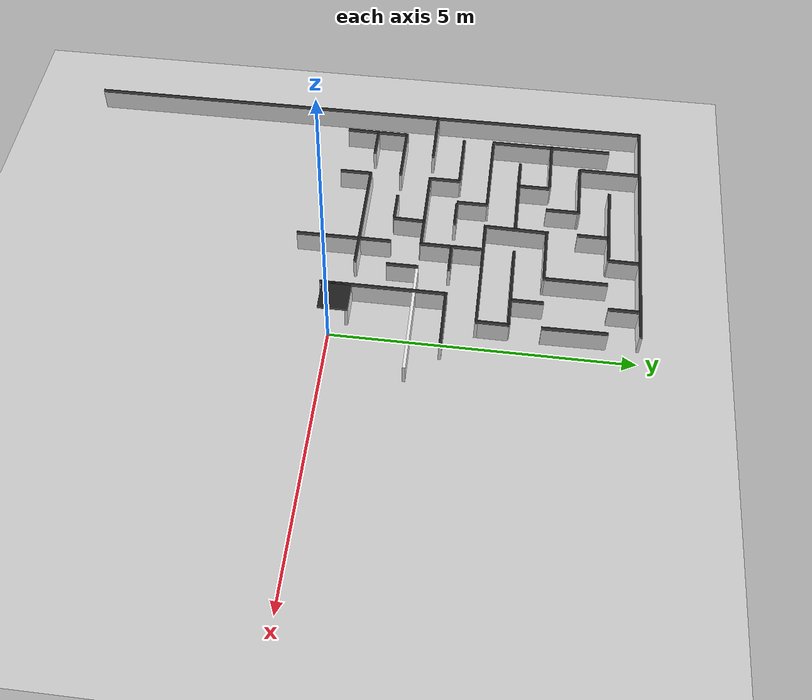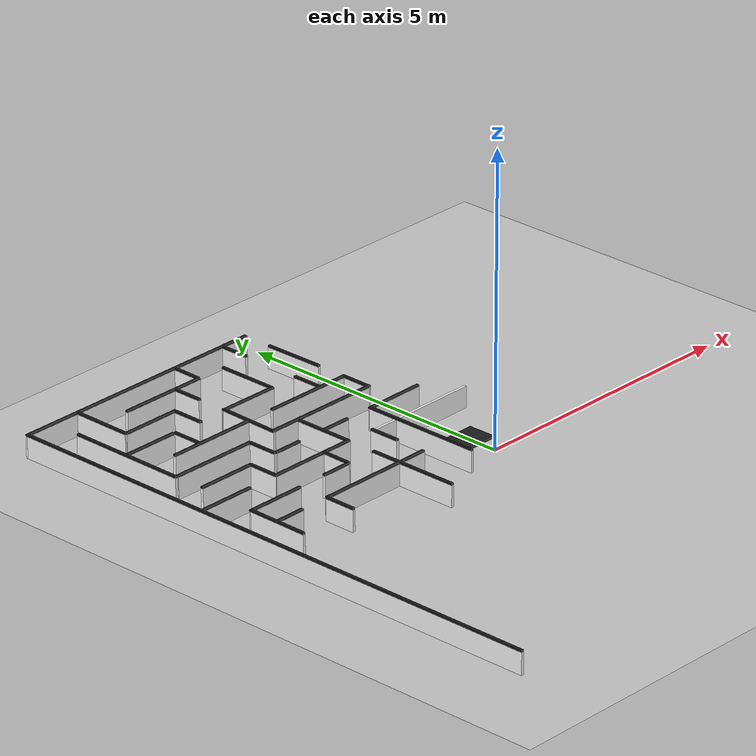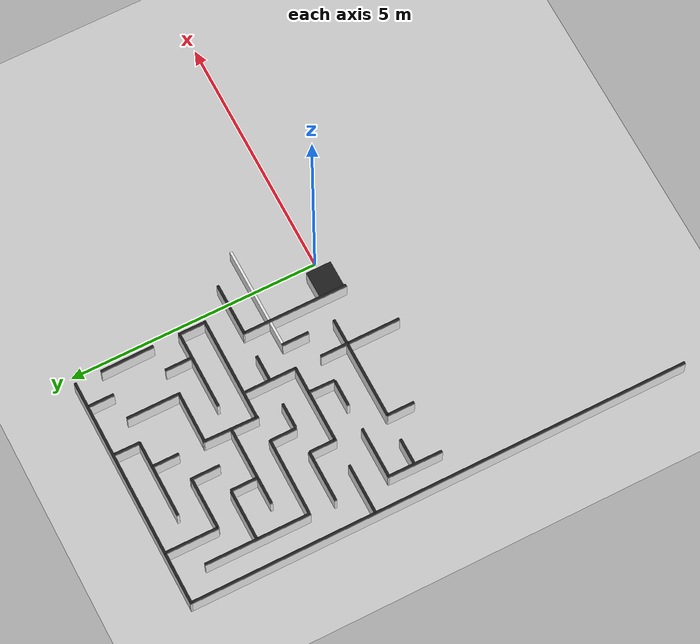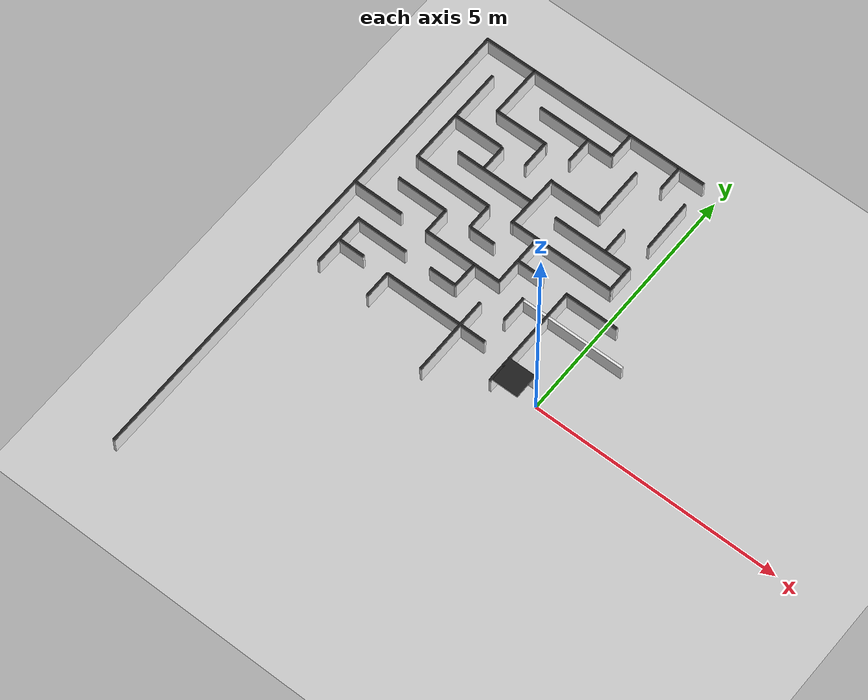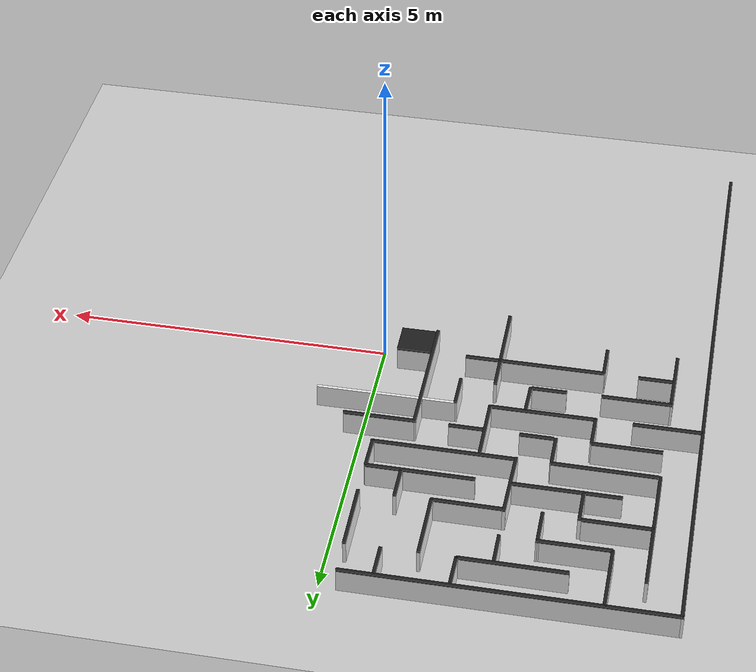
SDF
<sdf version="1.6">
 <world name="default">
  <model name="ground_plane">
   <static>1</static>
   <link name="link">
    <collision name="collision">
     <geometry><plane><normal>0 0 1</normal><size>100 100</size></plane></geometry>
     <surface><friction><ode><mu>100</mu><mu2>50</mu2></ode></friction></surface>
    </collision>
    <visual name="visual">
     <cast_shadows>0</cast_shadows>
     <geometry><plane><normal>0 0 1</normal><size>100 100</size></plane></geometry>
     <material>
      <script><uri>file://media/materials/scripts/gazebo.material</uri><name>Gazebo/Grey</name></script>
     </material>
    </visual>
   </link>
  </model>
  <model name="ibomaze">
   <link name="Wall_0">
    <collision name="Wall_0_Collision">
     <geometry><box><size>10.031 0.05 0.37</size></box></geometry>
     <pose>0 0 0.185 0 -0 0</pose>
    </collision>
    <visual name="Wall_0_Visual">
     <pose>0 0 0.185 0 -0 0</pose>
     <geometry><box><size>10.031 0.05 0.37</size></box></geometry>
     <material>
      <script><uri>file://media/materials/scripts/gazebo.material</uri><name>Gazebo/White</name></script>
      <ambient>1 1 1 1</ambient>
     </material>
    </visual>
    <pose>-4.98755 0.012016 0 0 -0 1.57082</pose>
   </link>
   <link name="Wall_110">
    <collision name="Wall_110_Collision">
     <geometry><box><size>1.10019 0.05 0.37</size></box></geometry>
     <pose>0 0 0.185 0 -0 0</pose>
    </collision>
    <visual name="Wall_110_Visual">
     <pose>0 0 0.185 0 -0 0</pose>
     <geometry><box><size>1.10019 0.05 0.37</size></box></geometry>
     <material>
      <script><uri>file://media/materials/scripts/gazebo.material</uri><name>Gazebo/White</name></script>
      <ambient>1 1 1 1</ambient>
     </material>
    </visual>
    <pose>-4.47942 0.275539 0 0 -0 1.56127</pose>
   </link>
   <link name="Wall_112">
    <collision name="Wall_112_Collision">
     <geometry><box><size>0.52 0.05 0.37</size></box></geometry>
     <pose>0 0 0.185 0 -0 0</pose>
    </collision>
    <visual name="Wall_112_Visual">
     <pose>0 0 0.185 0 -0 0</pose>
     <geometry><box><size>0.52 0.05 0.37</size></box></geometry>
     <material>
      <script><uri>file://media/materials/scripts/gazebo.material</uri><name>Gazebo/White</name></script>
      <ambient>1 1 1 1</ambient>
     </material>
    </visual>
    <pose>-4.19942 0.280539 0 0 -0 0</pose>
   </link>
   <link name="Wall_114">
    <collision name="Wall_114_Collision">
     <geometry><box><size>1.06 0.05 0.37</size></box></geometry>
     <pose>0 0 0.185 0 -0 0</pose>
    </collision>
    <visual name="Wall_114_Visual">
     <pose>0 0 0.185 0 -0 0</pose>
     <geometry><box><size>1.06 0.05 0.37</size></box></geometry>
     <material>
      <script><uri>file://media/materials/scripts/gazebo.material</uri><name>Gazebo/White</name></script>
      <ambient>1 1 1 1</ambient>
     </material>
    </visual>
    <pose>-3.96942 0.800539 0 0 -0 0</pose>
   </link>
   <link name="Wall_116">
    <collision name="Wall_116_Collision">
     <geometry><box><size>1.02 0.05 0.37</size></box></geometry>
     <pose>0 0 0.185 0 -0 0</pose>
    </collision>
    <visual name="Wall_116_Visual">
     <pose>0 0 0.185 0 -0 0</pose>
     <geometry><box><size>1.02 0.05 0.37</size></box></geometry>
     <material>
      <script><uri>file://media/materials/scripts/gazebo.material</uri><name>Gazebo/White</name></script>
      <ambient>1 1 1 1</ambient>
     </material>
    </visual>
    <pose>-4.46942 1.33054 0 0 -0 0</pose>
   </link>
   <link name="Wall_118">
    <collision name="Wall_118_Collision">
     <geometry><box><size>0.53023 0.05 0.37</size></box></geometry>
     <pose>0 0 0.185 0 -0 0</pose>
    </collision>
    <visual name="Wall_118_Visual">
     <pose>0 0 0.185 0 -0 0</pose>
     <geometry><box><size>0.53023 0.05 0.37</size></box></geometry>
     <material>
      <script><uri>file://media/materials/scripts/gazebo.material</uri><name>Gazebo/White</name></script>
      <ambient>1 1 1 1</ambient>
     </material>
    </visual>
    <pose>-2.65442 0.810539 0 0 -0 0</pose>
   </link>
   <link name="Wall_120">
    <collision name="Wall_120_Collision">
     <geometry><box><size>0.540102 0.05 0.37</size></box></geometry>
     <pose>0 0 0.185 0 -0 0</pose>
    </collision>
    <visual name="Wall_120_Visual">
     <pose>0 0 0.185 0 -0 0</pose>
     <geometry><box><size>0.540102 0.05 0.37</size></box></geometry>
     <material>
      <script><uri>file://media/materials/scripts/gazebo.material</uri><name>Gazebo/White</name></script>
      <ambient>1 1 1 1</ambient>
     </material>
    </visual>
    <pose>-2.36961 1.07227 0 0 0 -1.5912</pose>
   </link>
   <link name="Wall_122">
    <collision name="Wall_122_Collision">
     <geometry><box><size>1.59805 0.05 0.37</size></box></geometry>
     <pose>0 0 0.185 0 -0 0</pose>
    </collision>
    <visual name="Wall_122_Visual">
     <pose>0 0 0.185 0 -0 0</pose>
     <geometry><box><size>1.59805 0.05 0.37</size></box></geometry>
     <material>
      <script><uri>file://media/materials/scripts/gazebo.material</uri><name>Gazebo/White</name></script>
      <ambient>1 1 1 1</ambient>
     </material>
    </visual>
    <pose>-2.61942 1.33054 0 0 -0 3.14159</pose>
   </link>
   <link name="Wall_124">
    <collision name="Wall_124_Collision">
     <geometry><box><size>0.543 0.05 0.37</size></box></geometry>
     <pose>0 0 0.185 0 -0 0</pose>
    </collision>
    <visual name="Wall_124_Visual">
     <pose>0 0 0.185 0 -0 0</pose>
     <geometry><box><size>0.543 0.05 0.37</size></box></geometry>
     <material>
      <script><uri>file://media/materials/scripts/gazebo.material</uri><name>Gazebo/White</name></script>
      <ambient>1 1 1 1</ambient>
     </material>
    </visual>
    <pose>-3.40927 1.58031 0 0 0 -1.5708</pose>
   </link>
   <link name="Wall_126">
    <collision name="Wall_126_Collision">
     <geometry><box><size>1.043 0.05 0.37</size></box></geometry>
     <pose>0 0 0.185 0 -0 0</pose>
    </collision>
    <visual name="Wall_126_Visual">
     <pose>0 0 0.185 0 -0 0</pose>
     <geometry><box><size>1.043 0.05 0.37</size></box></geometry>
     <material>
      <script><uri>file://media/materials/scripts/gazebo.material</uri><name>Gazebo/White</name></script>
      <ambient>1 1 1 1</ambient>
     </material>
    </visual>
    <pose>-3.92799 1.85254 0 0 -0 0</pose>
   </link>
   <link name="Wall_128">
    <collision name="Wall_128_Collision">
     <geometry><box><size>0.51 0.05 0.37</size></box></geometry>
     <pose>0 0 0.185 0 -0 0</pose>
    </collision>
    <visual name="Wall_128_Visual">
     <pose>0 0 0.185 0 -0 0</pose>
     <geometry><box><size>0.51 0.05 0.37</size></box></geometry>
     <material>
      <script><uri>file://media/materials/scripts/gazebo.material</uri><name>Gazebo/White</name></script>
      <ambient>1 1 1 1</ambient>
     </material>
    </visual>
    <pose>-2.60561 1.85419 0 0 -0 3.14159</pose>
   </link>
   <link name="Wall_130">
    <collision name="Wall_130_Collision">
     <geometry><box><size>0.521 0.05 0.37</size></box></geometry>
     <pose>0 0 0.185 0 -0 0</pose>
    </collision>
    <visual name="Wall_130_Visual">
     <pose>0 0 0.185 0 -0 0</pose>
     <geometry><box><size>0.521 0.05 0.37</size></box></geometry>
     <material>
      <script><uri>file://media/materials/scripts/gazebo.material</uri><name>Gazebo/White</name></script>
      <ambient>1 1 1 1</ambient>
     </material>
    </visual>
    <pose>-2.88742 2.10975 0 0 0 -1.5708</pose>
   </link>
   <link name="Wall_132">
    <collision name="Wall_132_Collision">
     <geometry><box><size>1.55502 0.05 0.37</size></box></geometry>
     <pose>0 0 0.185 0 -0 0</pose>
    </collision>
    <visual name="Wall_132_Visual">
     <pose>0 0 0.185 0 -0 0</pose>
     <geometry><box><size>1.55502 0.05 0.37</size></box></geometry>
     <material>
      <script><uri>file://media/materials/scripts/gazebo.material</uri><name>Gazebo/White</name></script>
      <ambient>1 1 1 1</ambient>
     </material>
    </visual>
    <pose>-3.65246 2.38026 0 0 0 -0.005316</pose>
   </link>
   <link name="Wall_134">
    <collision name="Wall_134_Collision">
     <geometry><box><size>2.10101 0.05 0.37</size></box></geometry>
     <pose>0 0 0.185 0 -0 0</pose>
    </collision>
    <visual name="Wall_134_Visual">
     <pose>0 0 0.185 0 -0 0</pose>
     <geometry><box><size>2.10101 0.05 0.37</size></box></geometry>
     <material>
      <script><uri>file://media/materials/scripts/gazebo.material</uri><name>Gazebo/White</name></script>
      <ambient>1 1 1 1</ambient>
     </material>
    </visual>
    <pose>-4.45884 3.41859 0 0 0 -1.57372</pose>
   </link>
   <link name="Wall_136">
    <collision name="Wall_136_Collision">
     <geometry><box><size>1.01776 0.05 0.37</size></box></geometry>
     <pose>0 0 0.185 0 -0 0</pose>
    </collision>
    <visual name="Wall_136_Visual">
     <pose>0 0 0.185 0 -0 0</pose>
     <geometry><box><size>1.01776 0.05 0.37</size></box></geometry>
     <material>
      <script><uri>file://media/materials/scripts/gazebo.material</uri><name>Gazebo/White</name></script>
      <ambient>1 1 1 1</ambient>
     </material>
    </visual>
    <pose>-3.95442 3.43554 0 0 -0 0</pose>
   </link>
   <link name="Wall_138">
    <collision name="Wall_138_Collision">
     <geometry><box><size>0.534 0.05 0.37</size></box></geometry>
     <pose>0 0 0.185 0 -0 0</pose>
    </collision>
    <visual name="Wall_138_Visual">
     <pose>0 0 0.185 0 -0 0</pose>
     <geometry><box><size>0.534 0.05 0.37</size></box></geometry>
     <material>
      <script><uri>file://media/materials/scripts/gazebo.material</uri><name>Gazebo/White</name></script>
      <ambient>1 1 1 1</ambient>
     </material>
    </visual>
    <pose>-3.41798 3.17122 0 0 -0 1.5708</pose>
   </link>
   <link name="Wall_140">
    <collision name="Wall_140_Collision">
     <geometry><box><size>1.58536 0.05 0.37</size></box></geometry>
     <pose>0 0 0.185 0 -0 0</pose>
    </collision>
    <visual name="Wall_140_Visual">
     <pose>0 0 0.185 0 -0 0</pose>
     <geometry><box><size>1.58536 0.05 0.37</size></box></geometry>
     <material>
      <script><uri>file://media/materials/scripts/gazebo.material</uri><name>Gazebo/White</name></script>
      <ambient>1 1 1 1</ambient>
     </material>
    </visual>
    <pose>-3.17992 2.89854 0 0 -0 0</pose>
   </link>
   <link name="Wall_142">
    <collision name="Wall_142_Collision">
     <geometry><box><size>1.10734 0.05 0.37</size></box></geometry>
     <pose>0 0 0.185 0 -0 0</pose>
    </collision>
    <visual name="Wall_142_Visual">
     <pose>0 0 0.185 0 -0 0</pose>
     <geometry><box><size>1.10734 0.05 0.37</size></box></geometry>
     <material>
      <script><uri>file://media/materials/scripts/gazebo.material</uri><name>Gazebo/White</name></script>
      <ambient>1 1 1 1</ambient>
     </material>
    </visual>
    <pose>-2.36302 2.90878 0 0 0 -1.59184</pose>
   </link>
   <link name="Wall_144">
    <collision name="Wall_144_Collision">
     <geometry><box><size>2.15608 0.05 0.37</size></box></geometry>
     <pose>0 0 0.185 0 -0 0</pose>
    </collision>
    <visual name="Wall_144_Visual">
     <pose>0 0 0.185 0 -0 0</pose>
     <geometry><box><size>2.15608 0.05 0.37</size></box></geometry>
     <material>
      <script><uri>file://media/materials/scripts/gazebo.material</uri><name>Gazebo/White</name></script>
      <ambient>1 1 1 1</ambient>
     </material>
    </visual>
    <pose>-1.31538 2.38538 0 0 0 -0.000543</pose>
   </link>
   <link name="Wall_146">
    <collision name="Wall_146_Collision">
     <geometry><box><size>1.037 0.05 0.37</size></box></geometry>
     <pose>0 0 0.185 0 -0 0</pose>
    </collision>
    <visual name="Wall_146_Visual">
     <pose>0 0 0.185 0 -0 0</pose>
     <geometry><box><size>1.037 0.05 0.37</size></box></geometry>
     <material>
      <script><uri>file://media/materials/scripts/gazebo.material</uri><name>Gazebo/White</name></script>
      <ambient>1 1 1 1</ambient>
     </material>
    </visual>
    <pose>-1.83642 1.83616 0 0 0 -1.5708</pose>
   </link>
   <link name="Wall_148">
    <collision name="Wall_148_Collision">
     <geometry><box><size>0.529886 0.05 0.37</size></box></geometry>
     <pose>0 0 0.185 0 -0 0</pose>
    </collision>
    <visual name="Wall_148_Visual">
     <pose>0 0 0.185 0 -0 0</pose>
     <geometry><box><size>0.529886 0.05 0.37</size></box></geometry>
     <material>
      <script><uri>file://media/materials/scripts/gazebo.material</uri><name>Gazebo/White</name></script>
      <ambient>1 1 1 1</ambient>
     </material>
    </visual>
    <pose>-1.56342 1.84954 0 0 -0 3.14159</pose>
   </link>
   <link name="Wall_152">
    <collision name="Wall_152_Collision">
     <geometry><box><size>4.75301 0.05 0.37</size></box></geometry>
     <pose>0 0 0.185 0 -0 0</pose>
    </collision>
    <visual name="Wall_152_Visual">
     <pose>0 0 0.185 0 -0 0</pose>
     <geometry><box><size>4.75301 0.05 0.37</size></box></geometry>
     <material>
      <script><uri>file://media/materials/scripts/gazebo.material</uri><name>Gazebo/White</name></script>
      <ambient>1 1 1 1</ambient>
     </material>
    </visual>
    <pose>-2.63618 5.00649 0 0 -0 0.001701</pose>
   </link>
   <link name="Wall_154">
    <collision name="Wall_154_Collision">
     <geometry><box><size>1.06401 0.05 0.37</size></box></geometry>
     <pose>0 0 0.185 0 -0 0</pose>
    </collision>
    <visual name="Wall_154_Visual">
     <pose>0 0 0.185 0 -0 0</pose>
     <geometry><box><size>1.06401 0.05 0.37</size></box></geometry>
     <material>
      <script><uri>file://media/materials/scripts/gazebo.material</uri><name>Gazebo/White</name></script>
      <ambient>1 1 1 1</ambient>
     </material>
    </visual>
    <pose>-3.94298 4.48062 0 0 0 -1.57573</pose>
   </link>
   <link name="Wall_156">
    <collision name="Wall_156_Collision">
     <geometry><box><size>1.07401 0.05 0.37</size></box></geometry>
     <pose>0 0 0.185 0 -0 0</pose>
    </collision>
    <visual name="Wall_156_Visual">
     <pose>0 0 0.185 0 -0 0</pose>
     <geometry><box><size>1.07401 0.05 0.37</size></box></geometry>
     <material>
      <script><uri>file://media/materials/scripts/gazebo.material</uri><name>Gazebo/White</name></script>
      <ambient>1 1 1 1</ambient>
     </material>
    </visual>
    <pose>-3.40842 3.95604 0 0 0 -3.13671</pose>
   </link>
   <link name="Wall_158">
    <collision name="Wall_158_Collision">
     <geometry><box><size>0.587 0.05 0.37</size></box></geometry>
     <pose>0 0 0.185 0 -0 0</pose>
    </collision>
    <visual name="Wall_158_Visual">
     <pose>0 0 0.185 0 -0 0</pose>
     <geometry><box><size>0.587 0.05 0.37</size></box></geometry>
     <material>
      <script><uri>file://media/materials/scripts/gazebo.material</uri><name>Gazebo/White</name></script>
      <ambient>1 1 1 1</ambient>
     </material>
    </visual>
    <pose>-2.89642 3.69004 0 0 -0 1.5708</pose>
   </link>
   <link name="Wall_160">
    <collision name="Wall_160_Collision">
     <geometry><box><size>0.507585 0.05 0.37</size></box></geometry>
     <pose>0 0 0.185 0 -0 0</pose>
    </collision>
    <visual name="Wall_160_Visual">
     <pose>0 0 0.185 0 -0 0</pose>
     <geometry><box><size>0.507585 0.05 0.37</size></box></geometry>
     <material>
      <script><uri>file://media/materials/scripts/gazebo.material</uri><name>Gazebo/White</name></script>
      <ambient>1 1 1 1</ambient>
     </material>
    </visual>
    <pose>-1.83992 4.73054 0 0 -0 1.55988</pose>
   </link>
   <link name="Wall_162">
    <collision name="Wall_162_Collision">
     <geometry><box><size>1.572 0.05 0.37</size></box></geometry>
     <pose>0 0 0.185 0 -0 0</pose>
    </collision>
    <visual name="Wall_162_Visual">
     <pose>0 0 0.185 0 -0 0</pose>
     <geometry><box><size>1.572 0.05 0.37</size></box></geometry>
     <material>
      <script><uri>file://media/materials/scripts/gazebo.material</uri><name>Gazebo/White</name></script>
      <ambient>1 1 1 1</ambient>
     </material>
    </visual>
    <pose>-2.62248 4.48151 0 0 -0 0</pose>
   </link>
   <link name="Wall_164">
    <collision name="Wall_164_Collision">
     <geometry><box><size>0.523 0.05 0.37</size></box></geometry>
     <pose>0 0 0.185 0 -0 0</pose>
    </collision>
    <visual name="Wall_164_Visual">
     <pose>0 0 0.185 0 -0 0</pose>
     <geometry><box><size>0.523 0.05 0.37</size></box></geometry>
     <material>
      <script><uri>file://media/materials/scripts/gazebo.material</uri><name>Gazebo/White</name></script>
      <ambient>1 1 1 1</ambient>
     </material>
    </visual>
    <pose>-2.35942 4.21098 0 0 -0 1.5708</pose>
   </link>
   <link name="Wall_166">
    <collision name="Wall_166_Collision">
     <geometry><box><size>0.507292 0.05 0.37</size></box></geometry>
     <pose>0 0 0.185 0 -0 0</pose>
    </collision>
    <visual name="Wall_166_Visual">
     <pose>0 0 0.185 0 -0 0</pose>
     <geometry><box><size>0.507292 0.05 0.37</size></box></geometry>
     <material>
      <script><uri>file://media/materials/scripts/gazebo.material</uri><name>Gazebo/White</name></script>
      <ambient>1 1 1 1</ambient>
     </material>
    </visual>
    <pose>-0.784421 4.73804 0 0 -0 1.5708</pose>
   </link>
   <link name="Wall_788">
    <collision name="Wall_788_Collision">
     <geometry><box><size>1.09334 0.05 0.37</size></box></geometry>
     <pose>0 0 0.185 0 -0 0</pose>
    </collision>
    <visual name="Wall_788_Visual">
     <pose>0 0 0.185 0 -0 0</pose>
     <geometry><box><size>1.09334 0.05 0.37</size></box></geometry>
     <material>
      <script><uri>file://media/materials/scripts/gazebo.material</uri><name>Gazebo/White</name></script>
      <ambient>1 1 1 1</ambient>
     </material>
    </visual>
    <pose>-0.265082 1.85072 0 0 -0 0.005412</pose>
   </link>
   <link name="Wall_790">
    <collision name="Wall_790_Collision">
     <geometry><box><size>2.118 0.05 0.37</size></box></geometry>
     <pose>0 0 0.185 0 -0 0</pose>
    </collision>
    <visual name="Wall_790_Visual">
     <pose>0 0 0.185 0 -0 0</pose>
     <geometry><box><size>2.118 0.05 0.37</size></box></geometry>
     <material>
      <script><uri>file://media/materials/scripts/gazebo.material</uri><name>Gazebo/White</name></script>
      <ambient>1 1 1 1</ambient>
     </material>
    </visual>
    <pose>-0.788744 0.813892 0 0 0 -1.57273</pose>
   </link>
   <link name="Wall_796">
    <collision name="Wall_796_Collision">
     <geometry><box><size>1.61493 0.05 0.37</size></box></geometry>
     <pose>0 0 0.185 0 -0 0</pose>
    </collision>
    <visual name="Wall_796_Visual">
     <pose>0 0 0.185 0 -0 0</pose>
     <geometry><box><size>1.61493 0.05 0.37</size></box></geometry>
     <material>
      <script><uri>file://media/materials/scripts/gazebo.material</uri><name>Gazebo/White</name></script>
      <ambient>1 1 1 1</ambient>
     </material>
    </visual>
    <pose>-1.83543 0.010256 0 0 0 -1.56888</pose>
   </link>
   <link name="Wall_798">
    <collision name="Wall_798_Collision">
     <geometry><box><size>2.119 0.05 0.37</size></box></geometry>
     <pose>0 0 0.185 0 -0 0</pose>
    </collision>
    <visual name="Wall_798_Visual">
     <pose>0 0 0.185 0 -0 0</pose>
     <geometry><box><size>2.119 0.05 0.37</size></box></geometry>
     <material>
      <script><uri>file://media/materials/scripts/gazebo.material</uri><name>Gazebo/White</name></script>
      <ambient>1 1 1 1</ambient>
     </material>
    </visual>
    <pose>-2.36618 0.273696 0 0 -0 0</pose>
   </link>
   <link name="Wall_800">
    <collision name="Wall_800_Collision">
     <geometry><box><size>0.55 0.05 0.37</size></box></geometry>
     <pose>0 0 0.185 0 -0 0</pose>
    </collision>
    <visual name="Wall_800_Visual">
     <pose>0 0 0.185 0 -0 0</pose>
     <geometry><box><size>0.55 0.05 0.37</size></box></geometry>
     <material>
      <script><uri>file://media/materials/scripts/gazebo.material</uri><name>Gazebo/White</name></script>
      <ambient>1 1 1 1</ambient>
     </material>
    </visual>
    <pose>-3.41548 0.005426 0 0 -0 1.5708</pose>
   </link>
   <link name="Wall_816">
    <collision name="Wall_816_Collision">
     <geometry><box><size>0.549009 0.05 0.37</size></box></geometry>
     <pose>0 0 0.185 0 -0 0</pose>
    </collision>
    <visual name="Wall_816_Visual">
     <pose>0 0 0.185 0 -0 0</pose>
     <geometry><box><size>0.549009 0.05 0.37</size></box></geometry>
     <material>
      <script><uri>file://media/materials/scripts/gazebo.material</uri><name>Gazebo/White</name></script>
      <ambient>1 1 1 1</ambient>
     </material>
    </visual>
    <pose>-0.515921 0.270131 0 0 0 -3.13558</pose>
   </link>
   <link name="Wall_818">
    <collision name="Wall_818_Collision">
     <geometry><box><size>2.10304 0.05 0.37</size></box></geometry>
     <pose>0 0 0.185 0 -0 0</pose>
    </collision>
    <visual name="Wall_818_Visual">
     <pose>0 0 0.185 0 -0 0</pose>
     <geometry><box><size>2.10304 0.05 0.37</size></box></geometry>
     <material>
      <script><uri>file://media/materials/scripts/gazebo.material</uri><name>Gazebo/White</name></script>
      <ambient>1 1 1 1</ambient>
     </material>
    </visual>
    <pose>-0.260865 1.32367 0 0 -0 0.006332</pose>
   </link>
   <link name="Wall_824">
    <collision name="Wall_824_Collision">
     <geometry><box><size>0.556009 0.05 0.37</size></box></geometry>
     <pose>0 0 0.185 0 -0 0</pose>
    </collision>
    <visual name="Wall_824_Visual">
     <pose>0 0 0.185 0 -0 0</pose>
     <geometry><box><size>0.556009 0.05 0.37</size></box></geometry>
     <material>
      <script><uri>file://media/materials/scripts/gazebo.material</uri><name>Gazebo/White</name></script>
      <ambient>1 1 1 1</ambient>
     </material>
    </visual>
    <pose>-0.264114 2.63781 0 0 -0 1.56487</pose>
   </link>
   <link name="Wall_826">
    <collision name="Wall_826_Collision">
     <geometry><box><size>1.60603 0.05 0.37</size></box></geometry>
     <pose>0 0 0.185 0 -0 0</pose>
    </collision>
    <visual name="Wall_826_Visual">
     <pose>0 0 0.185 0 -0 0</pose>
     <geometry><box><size>1.60603 0.05 0.37</size></box></geometry>
     <material>
      <script><uri>file://media/materials/scripts/gazebo.material</uri><name>Gazebo/White</name></script>
      <ambient>1 1 1 1</ambient>
     </material>
    </visual>
    <pose>-1.05642 2.90554 0 0 -0 0</pose>
   </link>
   <link name="Wall_828">
    <collision name="Wall_828_Collision">
     <geometry><box><size>0.533998 0.05 0.37</size></box></geometry>
     <pose>0 0 0.185 0 -0 0</pose>
    </collision>
    <visual name="Wall_828_Visual">
     <pose>0 0 0.185 0 -0 0</pose>
     <geometry><box><size>0.533998 0.05 0.37</size></box></geometry>
     <material>
      <script><uri>file://media/materials/scripts/gazebo.material</uri><name>Gazebo/White</name></script>
      <ambient>1 1 1 1</ambient>
     </material>
    </visual>
    <pose>-0.785421 3.18054 0 0 0 -1.5708</pose>
   </link>
   <link name="Wall_830">
    <collision name="Wall_830_Collision">
     <geometry><box><size>1.08201 0.05 0.37</size></box></geometry>
     <pose>0 0 0.185 0 -0 0</pose>
    </collision>
    <visual name="Wall_830_Visual">
     <pose>0 0 0.185 0 -0 0</pose>
     <geometry><box><size>1.08201 0.05 0.37</size></box></geometry>
     <material>
      <script><uri>file://media/materials/scripts/gazebo.material</uri><name>Gazebo/White</name></script>
      <ambient>1 1 1 1</ambient>
     </material>
    </visual>
    <pose>-1.83589 3.42965 0 0 0 -0.003876</pose>
   </link>
   <link name="Wall_832">
    <collision name="Wall_832_Collision">
     <geometry><box><size>1.045 0.05 0.37</size></box></geometry>
     <pose>0 0 0.185 0 -0 0</pose>
    </collision>
    <visual name="Wall_832_Visual">
     <pose>0 0 0.185 0 -0 0</pose>
     <geometry><box><size>1.045 0.05 0.37</size></box></geometry>
     <material>
      <script><uri>file://media/materials/scripts/gazebo.material</uri><name>Gazebo/White</name></script>
      <ambient>1 1 1 1</ambient>
     </material>
    </visual>
    <pose>-1.31342 3.95669 0 0 0 -1.5708</pose>
   </link>
   <link name="Wall_896">
    <collision name="Wall_896_Collision">
     <geometry><box><size>1.06506 0.05 0.37</size></box></geometry>
     <pose>0 0 0.185 0 -0 0</pose>
    </collision>
    <visual name="Wall_896_Visual">
     <pose>0 0 0.185 0 -0 0</pose>
     <geometry><box><size>1.06506 0.05 0.37</size></box></geometry>
     <material>
      <script><uri>file://media/materials/scripts/gazebo.material</uri><name>Gazebo/White</name></script>
      <ambient>1 1 1 1</ambient>
     </material>
    </visual>
    <pose>-0.26544 3.964 0 0 0 -1.55996</pose>
   </link>
   <link name="Wall_900">
    <collision name="Wall_900_Collision">
     <geometry><box><size>0.538 0.05 0.37</size></box></geometry>
     <pose>0 0 0.185 0 -0 0</pose>
    </collision>
    <visual name="Wall_900_Visual">
     <pose>0 0 0.185 0 -0 0</pose>
     <geometry><box><size>0.538 0.05 0.37</size></box></geometry>
     <material>
      <script><uri>file://media/materials/scripts/gazebo.material</uri><name>Gazebo/White</name></script>
      <ambient>1 1 1 1</ambient>
     </material>
    </visual>
    <pose>-1.31466 1.06934 0 0 -0 1.5708</pose>
   </link>
   <static>1</static>
  </model>
  <model name="ibomaze_5">
   <pose>0 0 0.37 0 -0 0</pose>
   <link name="Wall_0">
    <collision name="Wall_0_Collision">
     <geometry><box><size>10.031 0.05 0.03</size></box></geometry>
     <pose>0 0 0.015 0 -0 0</pose>
    </collision>
    <visual name="Wall_0_Visual">
     <pose>0 0 0.015 0 -0 0</pose>
     <geometry><box><size>10.031 0.05 0.03</size></box></geometry>
     <material>
      <script><uri>file://media/materials/scripts/gazebo.material</uri><name>Gazebo/Black</name></script>
      <ambient>0 0 0 1</ambient>
     </material>
    </visual>
    <pose>-4.98755 0.012016 0 0 -0 1.57082</pose>
   </link>
   <link name="Wall_110">
    <collision name="Wall_110_Collision">
     <geometry><box><size>1.10019 0.05 0.03</size></box></geometry>
     <pose>0 0 0.015 0 -0 0</pose>
    </collision>
    <visual name="Wall_110_Visual">
     <pose>0 0 0.015 0 -0 0</pose>
     <geometry><box><size>1.10019 0.05 0.03</size></box></geometry>
     <material>
      <script><uri>file://media/materials/scripts/gazebo.material</uri><name>Gazebo/Black</name></script>
      <ambient>0 0 0 1</ambient>
     </material>
    </visual>
    <pose>-4.47942 0.275539 0 0 -0 1.56127</pose>
   </link>
   <link name="Wall_112">
    <collision name="Wall_112_Collision">
     <geometry><box><size>0.52 0.05 0.03</size></box></geometry>
     <pose>0 0 0.015 0 -0 0</pose>
    </collision>
    <visual name="Wall_112_Visual">
     <pose>0 0 0.015 0 -0 0</pose>
     <geometry><box><size>0.52 0.05 0.03</size></box></geometry>
     <material>
      <script><uri>file://media/materials/scripts/gazebo.material</uri><name>Gazebo/Black</name></script>
      <ambient>0 0 0 1</ambient>
     </material>
    </visual>
    <pose>-4.19942 0.280539 0 0 -0 0</pose>
   </link>
   <link name="Wall_114">
    <collision name="Wall_114_Collision">
     <geometry><box><size>1.06 0.05 0.03</size></box></geometry>
     <pose>0 0 0.015 0 -0 0</pose>
    </collision>
    <visual name="Wall_114_Visual">
     <pose>0 0 0.015 0 -0 0</pose>
     <geometry><box><size>1.06 0.05 0.03</size></box></geometry>
     <material>
      <script><uri>file://media/materials/scripts/gazebo.material</uri><name>Gazebo/Black</name></script>
      <ambient>0 0 0 1</ambient>
     </material>
    </visual>
    <pose>-3.96942 0.800539 0 0 -0 0</pose>
   </link>
   <link name="Wall_116">
    <collision name="Wall_116_Collision">
     <geometry><box><size>1.02 0.05 0.03</size></box></geometry>
     <pose>0 0 0.015 0 -0 0</pose>
    </collision>
    <visual name="Wall_116_Visual">
     <pose>0 0 0.015 0 -0 0</pose>
     <geometry><box><size>1.02 0.05 0.03</size></box></geometry>
     <material>
      <script><uri>file://media/materials/scripts/gazebo.material</uri><name>Gazebo/Black</name></script>
      <ambient>0 0 0 1</ambient>
     </material>
    </visual>
    <pose>-4.46942 1.33054 0 0 -0 0</pose>
   </link>
   <link name="Wall_118">
    <collision name="Wall_118_Collision">
     <geometry><box><size>0.53023 0.05 0.03</size></box></geometry>
     <pose>0 0 0.015 0 -0 0</pose>
    </collision>
    <visual name="Wall_118_Visual">
     <pose>0 0 0.015 0 -0 0</pose>
     <geometry><box><size>0.53023 0.05 0.03</size></box></geometry>
     <material>
      <script><uri>file://media/materials/scripts/gazebo.material</uri><name>Gazebo/Black</name></script>
      <ambient>0 0 0 1</ambient>
     </material>
    </visual>
    <pose>-2.65442 0.810539 0 0 -0 0</pose>
   </link>
   <link name="Wall_120">
    <collision name="Wall_120_Collision">
     <geometry><box><size>0.540102 0.05 0.03</size></box></geometry>
     <pose>0 0 0.015 0 -0 0</pose>
    </collision>
    <visual name="Wall_120_Visual">
     <pose>0 0 0.015 0 -0 0</pose>
     <geometry><box><size>0.540102 0.05 0.03</size></box></geometry>
     <material>
      <script><uri>file://media/materials/scripts/gazebo.material</uri><name>Gazebo/Black</name></script>
      <ambient>0 0 0 1</ambient>
     </material>
    </visual>
    <pose>-2.36961 1.07227 0 0 0 -1.5912</pose>
   </link>
   <link name="Wall_122">
    <collision name="Wall_122_Collision">
     <geometry><box><size>1.59805 0.05 0.03</size></box></geometry>
     <pose>0 0 0.015 0 -0 0</pose>
    </collision>
    <visual name="Wall_122_Visual">
     <pose>0 0 0.015 0 -0 0</pose>
     <geometry><box><size>1.59805 0.05 0.03</size></box></geometry>
     <material>
      <script><uri>file://media/materials/scripts/gazebo.material</uri><name>Gazebo/Black</name></script>
      <ambient>0 0 0 1</ambient>
     </material>
    </visual>
    <pose>-2.61942 1.33054 0 0 -0 3.14159</pose>
   </link>
   <link name="Wall_124">
    <collision name="Wall_124_Collision">
     <geometry><box><size>0.543 0.05 0.03</size></box></geometry>
     <pose>0 0 0.015 0 -0 0</pose>
    </collision>
    <visual name="Wall_124_Visual">
     <pose>0 0 0.015 0 -0 0</pose>
     <geometry><box><size>0.543 0.05 0.03</size></box></geometry>
     <material>
      <script><uri>file://media/materials/scripts/gazebo.material</uri><name>Gazebo/Black</name></script>
      <ambient>0 0 0 1</ambient>
     </material>
    </visual>
    <pose>-3.40927 1.58031 0 0 0 -1.5708</pose>
   </link>
   <link name="Wall_126">
    <collision name="Wall_126_Collision">
     <geometry><box><size>1.043 0.05 0.03</size></box></geometry>
     <pose>0 0 0.015 0 -0 0</pose>
    </collision>
    <visual name="Wall_126_Visual">
     <pose>0 0 0.015 0 -0 0</pose>
     <geometry><box><size>1.043 0.05 0.03</size></box></geometry>
     <material>
      <script><uri>file://media/materials/scripts/gazebo.material</uri><name>Gazebo/Black</name></script>
      <ambient>0 0 0 1</ambient>
     </material>
    </visual>
    <pose>-3.92799 1.85254 0 0 -0 0</pose>
   </link>
   <link name="Wall_128">
    <collision name="Wall_128_Collision">
     <geometry><box><size>0.51 0.05 0.03</size></box></geometry>
     <pose>0 0 0.015 0 -0 0</pose>
    </collision>
    <visual name="Wall_128_Visual">
     <pose>0 0 0.015 0 -0 0</pose>
     <geometry><box><size>0.51 0.05 0.03</size></box></geometry>
     <material>
      <script><uri>file://media/materials/scripts/gazebo.material</uri><name>Gazebo/Black</name></script>
      <ambient>0 0 0 1</ambient>
     </material>
    </visual>
    <pose>-2.60561 1.85419 0 0 -0 3.14159</pose>
   </link>
   <link name="Wall_130">
    <collision name="Wall_130_Collision">
     <geometry><box><size>0.521 0.05 0.03</size></box></geometry>
     <pose>0 0 0.015 0 -0 0</pose>
    </collision>
    <visual name="Wall_130_Visual">
     <pose>0 0 0.015 0 -0 0</pose>
     <geometry><box><size>0.521 0.05 0.03</size></box></geometry>
     <material>
      <script><uri>file://media/materials/scripts/gazebo.material</uri><name>Gazebo/Black</name></script>
      <ambient>0 0 0 1</ambient>
     </material>
    </visual>
    <pose>-2.88742 2.10975 0 0 0 -1.5708</pose>
   </link>
   <link name="Wall_132">
    <collision name="Wall_132_Collision">
     <geometry><box><size>1.55502 0.05 0.03</size></box></geometry>
     <pose>0 0 0.015 0 -0 0</pose>
    </collision>
    <visual name="Wall_132_Visual">
     <pose>0 0 0.015 0 -0 0</pose>
     <geometry><box><size>1.55502 0.05 0.03</size></box></geometry>
     <material>
      <script><uri>file://media/materials/scripts/gazebo.material</uri><name>Gazebo/Black</name></script>
      <ambient>0 0 0 1</ambient>
     </material>
    </visual>
    <pose>-3.65246 2.38026 0 0 0 -0.005316</pose>
   </link>
   <link name="Wall_134">
    <collision name="Wall_134_Collision">
     <geometry><box><size>2.10101 0.05 0.03</size></box></geometry>
     <pose>0 0 0.015 0 -0 0</pose>
    </collision>
    <visual name="Wall_134_Visual">
     <pose>0 0 0.015 0 -0 0</pose>
     <geometry><box><size>2.10101 0.05 0.03</size></box></geometry>
     <material>
      <script><uri>file://media/materials/scripts/gazebo.material</uri><name>Gazebo/Black</name></script>
      <ambient>0 0 0 1</ambient>
     </material>
    </visual>
    <pose>-4.45884 3.41859 0 0 0 -1.57372</pose>
   </link>
   <link name="Wall_136">
    <collision name="Wall_136_Collision">
     <geometry><box><size>1.01776 0.05 0.03</size></box></geometry>
     <pose>0 0 0.015 0 -0 0</pose>
    </collision>
    <visual name="Wall_136_Visual">
     <pose>0 0 0.015 0 -0 0</pose>
     <geometry><box><size>1.01776 0.05 0.03</size></box></geometry>
     <material>
      <script><uri>file://media/materials/scripts/gazebo.material</uri><name>Gazebo/Black</name></script>
      <ambient>0 0 0 1</ambient>
     </material>
    </visual>
    <pose>-3.95442 3.43554 0 0 -0 0</pose>
   </link>
   <link name="Wall_138">
    <collision name="Wall_138_Collision">
     <geometry><box><size>0.534 0.05 0.03</size></box></geometry>
     <pose>0 0 0.015 0 -0 0</pose>
    </collision>
    <visual name="Wall_138_Visual">
     <pose>0 0 0.015 0 -0 0</pose>
     <geometry><box><size>0.534 0.05 0.03</size></box></geometry>
     <material>
      <script><uri>file://media/materials/scripts/gazebo.material</uri><name>Gazebo/Black</name></script>
      <ambient>0 0 0 1</ambient>
     </material>
    </visual>
    <pose>-3.41798 3.17122 0 0 -0 1.5708</pose>
   </link>
   <link name="Wall_140">
    <collision name="Wall_140_Collision">
     <geometry><box><size>1.58536 0.05 0.03</size></box></geometry>
     <pose>0 0 0.015 0 -0 0</pose>
    </collision>
    <visual name="Wall_140_Visual">
     <pose>0 0 0.015 0 -0 0</pose>
     <geometry><box><size>1.58536 0.05 0.03</size></box></geometry>
     <material>
      <script><uri>file://media/materials/scripts/gazebo.material</uri><name>Gazebo/Black</name></script>
      <ambient>0 0 0 1</ambient>
     </material>
    </visual>
    <pose>-3.17992 2.89854 0 0 -0 0</pose>
   </link>
   <link name="Wall_142">
    <collision name="Wall_142_Collision">
     <geometry><box><size>1.10734 0.05 0.03</size></box></geometry>
     <pose>0 0 0.015 0 -0 0</pose>
    </collision>
    <visual name="Wall_142_Visual">
     <pose>0 0 0.015 0 -0 0</pose>
     <geometry><box><size>1.10734 0.05 0.03</size></box></geometry>
     <material>
      <script><uri>file://media/materials/scripts/gazebo.material</uri><name>Gazebo/Black</name></script>
      <ambient>0 0 0 1</ambient>
     </material>
    </visual>
    <pose>-2.36302 2.90878 0 0 0 -1.59184</pose>
   </link>
   <link name="Wall_144">
    <collision name="Wall_144_Collision">
     <geometry><box><size>2.15608 0.05 0.03</size></box></geometry>
     <pose>0 0 0.015 0 -0 0</pose>
    </collision>
    <visual name="Wall_144_Visual">
     <pose>0 0 0.015 0 -0 0</pose>
     <geometry><box><size>2.15608 0.05 0.03</size></box></geometry>
     <material>
      <script><uri>file://media/materials/scripts/gazebo.material</uri><name>Gazebo/Black</name></script>
      <ambient>0 0 0 1</ambient>
     </material>
    </visual>
    <pose>-1.31538 2.38538 0 0 0 -0.000543</pose>
   </link>
   <link name="Wall_146">
    <collision name="Wall_146_Collision">
     <geometry><box><size>1.037 0.05 0.03</size></box></geometry>
     <pose>0 0 0.015 0 -0 0</pose>
    </collision>
    <visual name="Wall_146_Visual">
     <pose>0 0 0.015 0 -0 0</pose>
     <geometry><box><size>1.037 0.05 0.03</size></box></geometry>
     <material>
      <script><uri>file://media/materials/scripts/gazebo.material</uri><name>Gazebo/Black</name></script>
      <ambient>0 0 0 1</ambient>
     </material>
    </visual>
    <pose>-1.83642 1.83616 0 0 0 -1.5708</pose>
   </link>
   <link name="Wall_148">
    <collision name="Wall_148_Collision">
     <geometry><box><size>0.529886 0.05 0.03</size></box></geometry>
     <pose>0 0 0.015 0 -0 0</pose>
    </collision>
    <visual name="Wall_148_Visual">
     <pose>0 0 0.015 0 -0 0</pose>
     <geometry><box><size>0.529886 0.05 0.03</size></box></geometry>
     <material>
      <script><uri>file://media/materials/scripts/gazebo.material</uri><name>Gazebo/Black</name></script>
      <ambient>0 0 0 1</ambient>
     </material>
    </visual>
    <pose>-1.56342 1.84954 0 0 -0 3.14159</pose>
   </link>
   <link name="Wall_152">
    <collision name="Wall_152_Collision">
     <geometry><box><size>4.75301 0.05 0.03</size></box></geometry>
     <pose>0 0 0.015 0 -0 0</pose>
    </collision>
    <visual name="Wall_152_Visual">
     <pose>0 0 0.015 0 -0 0</pose>
     <geometry><box><size>4.75301 0.05 0.03</size></box></geometry>
     <material>
      <script><uri>file://media/materials/scripts/gazebo.material</uri><name>Gazebo/Black</name></script>
      <ambient>0 0 0 1</ambient>
     </material>
    </visual>
    <pose>-2.63618 5.00649 0 0 -0 0.001701</pose>
   </link>
   <link name="Wall_154">
    <collision name="Wall_154_Collision">
     <geometry><box><size>1.06401 0.05 0.03</size></box></geometry>
     <pose>0 0 0.015 0 -0 0</pose>
    </collision>
    <visual name="Wall_154_Visual">
     <pose>0 0 0.015 0 -0 0</pose>
     <geometry><box><size>1.06401 0.05 0.03</size></box></geometry>
     <material>
      <script><uri>file://media/materials/scripts/gazebo.material</uri><name>Gazebo/Black</name></script>
      <ambient>0 0 0 1</ambient>
     </material>
    </visual>
    <pose>-3.94298 4.48062 0 0 0 -1.57573</pose>
   </link>
   <link name="Wall_156">
    <collision name="Wall_156_Collision">
     <geometry><box><size>1.07401 0.05 0.03</size></box></geometry>
     <pose>0 0 0.015 0 -0 0</pose>
    </collision>
    <visual name="Wall_156_Visual">
     <pose>0 0 0.015 0 -0 0</pose>
     <geometry><box><size>1.07401 0.05 0.03</size></box></geometry>
     <material>
      <script><uri>file://media/materials/scripts/gazebo.material</uri><name>Gazebo/Black</name></script>
      <ambient>0 0 0 1</ambient>
     </material>
    </visual>
    <pose>-3.40842 3.95604 0 0 0 -3.13671</pose>
   </link>
   <link name="Wall_158">
    <collision name="Wall_158_Collision">
     <geometry><box><size>0.587 0.05 0.03</size></box></geometry>
     <pose>0 0 0.015 0 -0 0</pose>
    </collision>
    <visual name="Wall_158_Visual">
     <pose>0 0 0.015 0 -0 0</pose>
     <geometry><box><size>0.587 0.05 0.03</size></box></geometry>
     <material>
      <script><uri>file://media/materials/scripts/gazebo.material</uri><name>Gazebo/Black</name></script>
      <ambient>0 0 0 1</ambient>
     </material>
    </visual>
    <pose>-2.89642 3.69004 0 0 -0 1.5708</pose>
   </link>
   <link name="Wall_160">
    <collision name="Wall_160_Collision">
     <geometry><box><size>0.507585 0.05 0.03</size></box></geometry>
     <pose>0 0 0.015 0 -0 0</pose>
    </collision>
    <visual name="Wall_160_Visual">
     <pose>0 0 0.015 0 -0 0</pose>
     <geometry><box><size>0.507585 0.05 0.03</size></box></geometry>
     <material>
      <script><uri>file://media/materials/scripts/gazebo.material</uri><name>Gazebo/Black</name></script>
      <ambient>0 0 0 1</ambient>
     </material>
    </visual>
    <pose>-1.83992 4.73054 0 0 -0 1.55988</pose>
   </link>
   <link name="Wall_162">
    <collision name="Wall_162_Collision">
     <geometry><box><size>1.572 0.05 0.03</size></box></geometry>
     <pose>0 0 0.015 0 -0 0</pose>
    </collision>
    <visual name="Wall_162_Visual">
     <pose>0 0 0.015 0 -0 0</pose>
     <geometry><box><size>1.572 0.05 0.03</size></box></geometry>
     <material>
      <script><uri>file://media/materials/scripts/gazebo.material</uri><name>Gazebo/Black</name></script>
      <ambient>0 0 0 1</ambient>
     </material>
    </visual>
    <pose>-2.62248 4.48151 0 0 -0 0</pose>
   </link>
   <link name="Wall_164">
    <collision name="Wall_164_Collision">
     <geometry><box><size>0.523 0.05 0.03</size></box></geometry>
     <pose>0 0 0.015 0 -0 0</pose>
    </collision>
    <visual name="Wall_164_Visual">
     <pose>0 0 0.015 0 -0 0</pose>
     <geometry><box><size>0.523 0.05 0.03</size></box></geometry>
     <material>
      <script><uri>file://media/materials/scripts/gazebo.material</uri><name>Gazebo/Black</name></script>
      <ambient>0 0 0 1</ambient>
     </material>
    </visual>
    <pose>-2.35942 4.21098 0 0 -0 1.5708</pose>
   </link>
   <link name="Wall_166">
    <collision name="Wall_166_Collision">
     <geometry><box><size>0.507292 0.05 0.03</size></box></geometry>
     <pose>0 0 0.015 0 -0 0</pose>
    </collision>
    <visual name="Wall_166_Visual">
     <pose>0 0 0.015 0 -0 0</pose>
     <geometry><box><size>0.507292 0.05 0.03</size></box></geometry>
     <material>
      <script><uri>file://media/materials/scripts/gazebo.material</uri><name>Gazebo/Black</name></script>
      <ambient>0 0 0 1</ambient>
     </material>
    </visual>
    <pose>-0.784421 4.73804 0 0 -0 1.5708</pose>
   </link>
   <link name="Wall_788">
    <collision name="Wall_788_Collision">
     <geometry><box><size>1.09334 0.05 0.03</size></box></geometry>
     <pose>0 0 0.015 0 -0 0</pose>
    </collision>
    <visual name="Wall_788_Visual">
     <pose>0 0 0.015 0 -0 0</pose>
     <geometry><box><size>1.09334 0.05 0.03</size></box></geometry>
     <material>
      <script><uri>file://media/materials/scripts/gazebo.material</uri><name>Gazebo/Black</name></script>
      <ambient>0 0 0 1</ambient>
     </material>
    </visual>
    <pose>-0.265082 1.85072 0 0 -0 0.005412</pose>
   </link>
   <link name="Wall_790">
    <collision name="Wall_790_Collision">
     <geometry><box><size>2.118 0.05 0.03</size></box></geometry>
     <pose>0 0 0.015 0 -0 0</pose>
    </collision>
    <visual name="Wall_790_Visual">
     <pose>0 0 0.015 0 -0 0</pose>
     <geometry><box><size>2.118 0.05 0.03</size></box></geometry>
     <material>
      <script><uri>file://media/materials/scripts/gazebo.material</uri><name>Gazebo/Black</name></script>
      <ambient>0 0 0 1</ambient>
     </material>
    </visual>
    <pose>-0.788744 0.813892 0 0 0 -1.57273</pose>
   </link>
   <link name="Wall_796">
    <collision name="Wall_796_Collision">
     <geometry><box><size>1.61493 0.05 0.03</size></box></geometry>
     <pose>0 0 0.015 0 -0 0</pose>
    </collision>
    <visual name="Wall_796_Visual">
     <pose>0 0 0.015 0 -0 0</pose>
     <geometry><box><size>1.61493 0.05 0.03</size></box></geometry>
     <material>
      <script><uri>file://media/materials/scripts/gazebo.material</uri><name>Gazebo/Black</name></script>
      <ambient>0 0 0 1</ambient>
     </material>
    </visual>
    <pose>-1.83543 0.010256 0 0 0 -1.56888</pose>
   </link>
   <link name="Wall_798">
    <collision name="Wall_798_Collision">
     <geometry><box><size>2.119 0.05 0.03</size></box></geometry>
     <pose>0 0 0.015 0 -0 0</pose>
    </collision>
    <visual name="Wall_798_Visual">
     <pose>0 0 0.015 0 -0 0</pose>
     <geometry><box><size>2.119 0.05 0.03</size></box></geometry>
     <material>
      <script><uri>file://media/materials/scripts/gazebo.material</uri><name>Gazebo/Black</name></script>
      <ambient>0 0 0 1</ambient>
     </material>
    </visual>
    <pose>-2.36618 0.273696 0 0 -0 0</pose>
   </link>
   <link name="Wall_800">
    <collision name="Wall_800_Collision">
     <geometry><box><size>0.55 0.05 0.03</size></box></geometry>
     <pose>0 0 0.015 0 -0 0</pose>
    </collision>
    <visual name="Wall_800_Visual">
     <pose>0 0 0.015 0 -0 0</pose>
     <geometry><box><size>0.55 0.05 0.03</size></box></geometry>
     <material>
      <script><uri>file://media/materials/scripts/gazebo.material</uri><name>Gazebo/Black</name></script>
      <ambient>0 0 0 1</ambient>
     </material>
    </visual>
    <pose>-3.41548 0.005426 0 0 -0 1.5708</pose>
   </link>
   <link name="Wall_816">
    <collision name="Wall_816_Collision">
     <geometry><box><size>0.549009 0.5 0.03</size></box></geometry>
     <pose>0 0.225 0.015 0 -0 0</pose>
    </collision>
    <visual name="Wall_816_Visual">
     <pose>0 0.225 0.015 0 -0 0</pose>
     <geometry><box><size>0.549009 0.5 0.03</size></box></geometry>
     <material>
      <script><uri>file://media/materials/scripts/gazebo.material</uri><name>Gazebo/Black</name></script>
      <ambient>0 0 0 1</ambient>
     </material>
    </visual>
    <pose>-0.515921 0.270131 0 0 0 -3.13558</pose>
   </link>
   <link name="Wall_824">
    <collision name="Wall_824_Collision">
     <geometry><box><size>0.556009 0.05 0.03</size></box></geometry>
     <pose>0 0 0.015 0 -0 0</pose>
    </collision>
    <visual name="Wall_824_Visual">
     <pose>0 0 0.015 0 -0 0</pose>
     <geometry><box><size>0.556009 0.05 0.03</size></box></geometry>
     <material>
      <script><uri>file://media/materials/scripts/gazebo.material</uri><name>Gazebo/Black</name></script>
      <ambient>0 0 0 1</ambient>
     </material>
    </visual>
    <pose>-0.264114 2.63781 0 0 -0 1.56487</pose>
   </link>
   <link name="Wall_826">
    <collision name="Wall_826_Collision">
     <geometry><box><size>1.60603 0.05 0.03</size></box></geometry>
     <pose>0 0 0.015 0 -0 0</pose>
    </collision>
    <visual name="Wall_826_Visual">
     <pose>0 0 0.015 0 -0 0</pose>
     <geometry><box><size>1.60603 0.05 0.03</size></box></geometry>
     <material>
      <script><uri>file://media/materials/scripts/gazebo.material</uri><name>Gazebo/Black</name></script>
      <ambient>0 0 0 1</ambient>
     </material>
    </visual>
    <pose>-1.05642 2.90554 0 0 -0 0</pose>
   </link>
   <link name="Wall_828">
    <collision name="Wall_828_Collision">
     <geometry><box><size>0.533998 0.05 0.03</size></box></geometry>
     <pose>0 0 0.015 0 -0 0</pose>
    </collision>
    <visual name="Wall_828_Visual">
     <pose>0 0 0.015 0 -0 0</pose>
     <geometry><box><size>0.533998 0.05 0.03</size></box></geometry>
     <material>
      <script><uri>file://media/materials/scripts/gazebo.material</uri><name>Gazebo/Black</name></script>
      <ambient>0 0 0 1</ambient>
     </material>
    </visual>
    <pose>-0.785421 3.18054 0 0 0 -1.5708</pose>
   </link>
   <link name="Wall_830">
    <collision name="Wall_830_Collision">
     <geometry><box><size>1.08201 0.05 0.03</size></box></geometry>
     <pose>0 0 0.015 0 -0 0</pose>
    </collision>
    <visual name="Wall_830_Visual">
     <pose>0 0 0.015 0 -0 0</pose>
     <geometry><box><size>1.08201 0.05 0.03</size></box></geometry>
     <material>
      <script><uri>file://media/materials/scripts/gazebo.material</uri><name>Gazebo/Black</name></script>
      <ambient>0 0 0 1</ambient>
     </material>
    </visual>
    <pose>-1.83589 3.42965 0 0 0 -0.003876</pose>
   </link>
   <link name="Wall_832">
    <collision name="Wall_832_Collision">
     <geometry><box><size>1.045 0.05 0.03</size></box></geometry>
     <pose>0 0 0.015 0 -0 0</pose>
    </collision>
    <visual name="Wall_832_Visual">
     <pose>0 0 0.015 0 -0 0</pose>
     <geometry><box><size>1.045 0.05 0.03</size></box></geometry>
     <material>
      <script><uri>file://media/materials/scripts/gazebo.material</uri><name>Gazebo/Black</name></script>
      <ambient>0 0 0 1</ambient>
     </material>
    </visual>
    <pose>-1.31342 3.95669 0 0 0 -1.5708</pose>
   </link>
   <link name="Wall_896">
    <collision name="Wall_896_Collision">
     <geometry><box><size>1.06506 0.05 0.03</size></box></geometry>
     <pose>0 0 0.015 0 -0 0</pose>
    </collision>
    <visual name="Wall_896_Visual">
     <pose>0 0 0.015 0 -0 0</pose>
     <geometry><box><size>1.06506 0.05 0.03</size></box></geometry>
     <material>
      <script><uri>file://media/materials/scripts/gazebo.material</uri><name>Gazebo/Black</name></script>
      <ambient>0 0 0 1</ambient>
     </material>
    </visual>
    <pose>-0.26544 3.964 0 0 0 -1.55996</pose>
   </link>
   <link name="Wall_900">
    <collision name="Wall_900_Collision">
     <geometry><box><size>0.538 0.05 0.03</size></box></geometry>
     <pose>0 0 0.015 0 -0 0</pose>
    </collision>
    <visual name="Wall_900_Visual">
     <pose>0 0 0.015 0 -0 0</pose>
     <geometry><box><size>0.538 0.05 0.03</size></box></geometry>
     <material>
      <script><uri>file://media/materials/scripts/gazebo.material</uri><name>Gazebo/Black</name></script>
      <ambient>0 0 0 1</ambient>
     </material>
    </visual>
    <pose>-1.31466 1.06934 0 0 -0 1.5708</pose>
   </link>
   <static>1</static>
  </model>
 </world>
</sdf>
